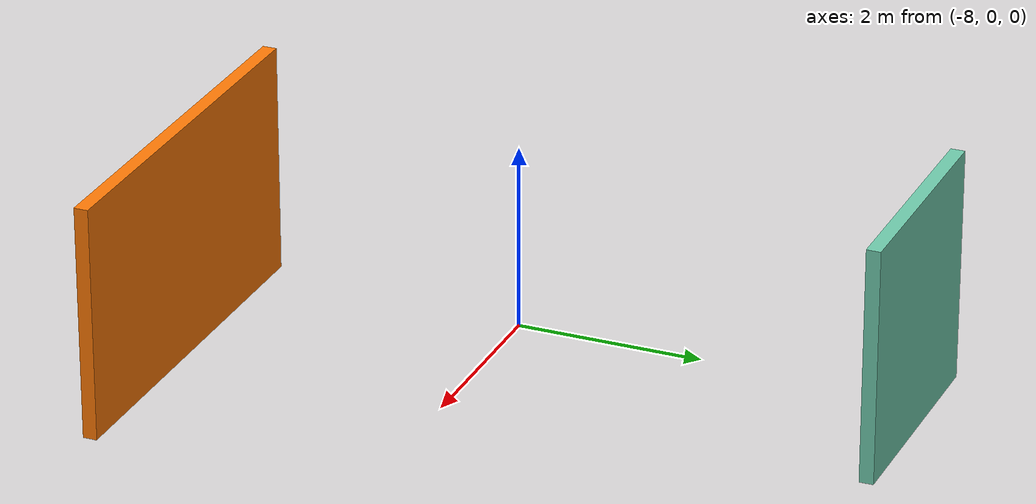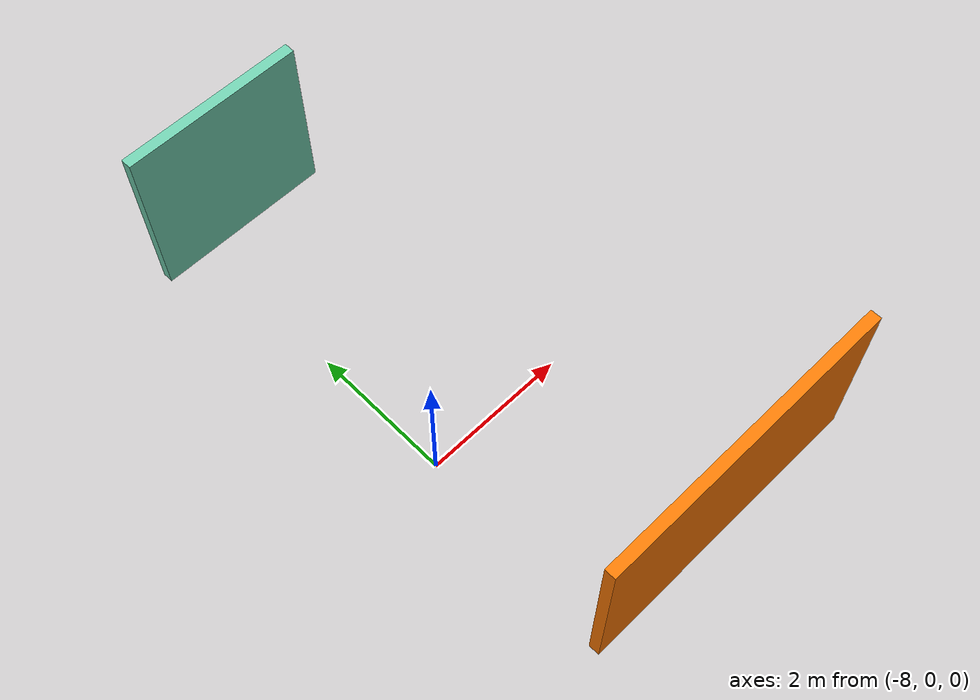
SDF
<?xml version='1.0'?>
<sdf version='1.6'>
  <model name='my_model'>
    <pose frame=''>-6.35339 0.75522 0 0 -0 0</pose>
    <link name='Wall_10'>
      <collision name='Wall_10_Collision'>
        <geometry>
          <box>
            <size>2.5 0.15 2.5</size>
          </box>
        </geometry>
        <pose frame=''>0 0 1.25 0 -0 0</pose>
      </collision>
      <visual name='Wall_10_Visual'>
        <pose frame=''>0 0 1.25 0 -0 0</pose>
        <geometry>
          <box>
            <size>2.5 0.15 2.5</size>
          </box>
        </geometry>
        <material>
          <script>
            <uri>file://media/materials/scripts/gazebo.material</uri>
            <name>Gazebo/Grey</name>
          </script>
          <ambient>0.435294 0.796078 0.67451 1</ambient>
        </material>
      </visual>
      <pose frame=''>-1.05109 3.67826 0 0 -0 0</pose>
    </link>
    <link name='Wall_6'>
      <collision name='Wall_6_Collision'>
        <geometry>
          <box>
            <size>4.25 0.15 2.5</size>
          </box>
        </geometry>
        <pose frame=''>0 0 1.25 0 -0 0</pose>
      </collision>
      <visual name='Wall_6_Visual'>
        <pose frame=''>0 0 1.25 0 -0 0</pose>
        <geometry>
          <box>
            <size>4.25 0.15 2.5</size>
          </box>
        </geometry>
        <material>
          <script>
            <uri>file://media/materials/scripts/gazebo.material</uri>
            <name>Gazebo/Grey</name>
          </script>
          <ambient>0.996078 0.47451 0.0196078 1</ambient>
        </material>
      </visual>
      <pose frame=''>0.176087 -3.67826 0 0 -0 3.14159</pose>
    </link>
    <static>1</static>
  </model>
</sdf>
